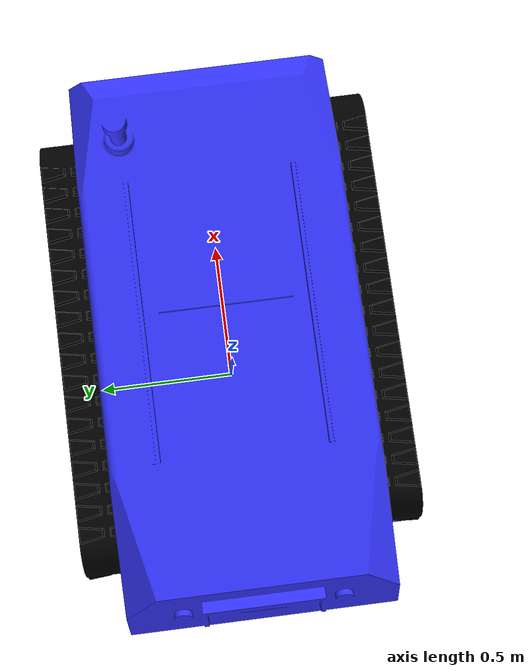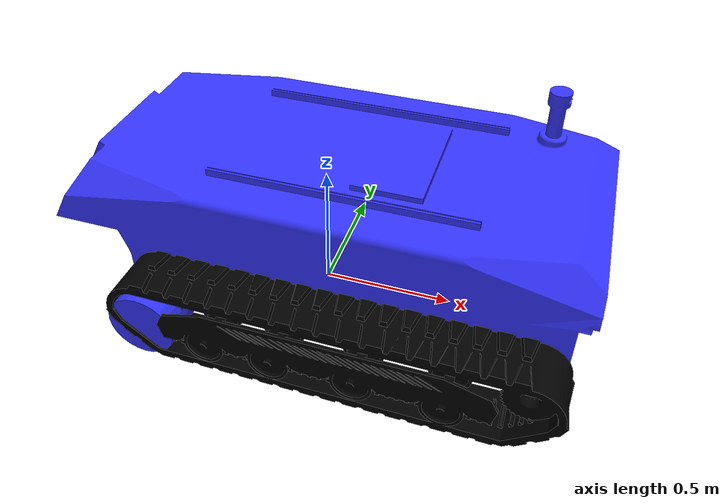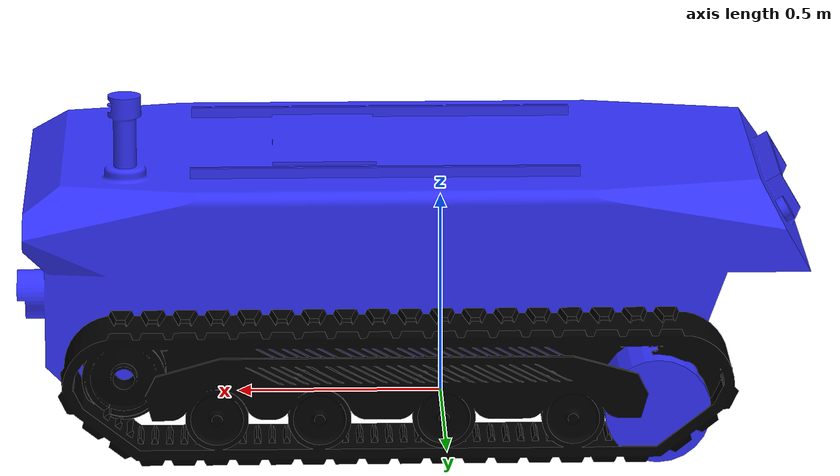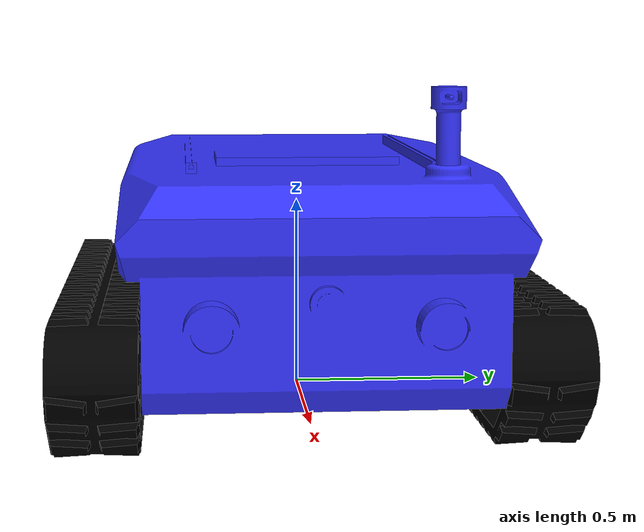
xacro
<?xml version="1.0"?>
<robot xmlns:xacro="http://www.ros.org/wiki/xacro" >

    <xacro:include filename="ugv_inertials.xacro"/>

    <material name="white">
        <color rgba="1 1 1 1" />
    </material>

    <material name="orange">
        <color rgba="1 0.3 0.1 1"/>
    </material>

    <material name="blue">
        <color rgba="0.2 0.2 1 1"/>
    </material>

    <material name="black">
        <color rgba="0 0 0 1"/>
    </material>

    <!-- BASE LINK -->
    <link name="base_link">
        <inertial>
          <mass value="1.0"/>
          <origin xyz="0 0 0" rpy="0 0 0"/>
          <inertia
            ixx="0.1" ixy="0.0" ixz="0.0"
            iyy="0.1" iyz="0.0"
            izz="0.1"/>
        </inertial>
        <visual>
          <geometry>
            <box size="0.2 0.2 0.2"/>
          </geometry>
          <origin xyz="0 0 0.1" rpy="0 0 0"/>
          <material name="white"/>
        </visual>
      </link>

    <!-- CHASSIS LINK -->
    <link name="chassis_link">
        <visual>
            <origin xyz="-0.88 -0.45 0" rpy="1.5708 0 1.5708"/> <!-- the total width of the body is 0.9 -->
            <geometry>
                <mesh
                  filename="file://$(find ugv_description)/meshes/body.STL" />
              </geometry>
            <material name="blue"/> <!-- Added here -->
        </visual>

        <collision>
            <origin xyz="-0.88 -0.45 0" rpy="1.5708 0 1.5708"/>
            <geometry>
                <mesh
                  filename="file://$(find ugv_description)/meshes/body.STL" />
              </geometry>
        </collision>

        <inertial>
          <mass value="15.0"/>
          <origin xyz="0.0 0 0" rpy=" 0 0 0"/>
          <inertia
              ixx="0.85" ixy="0" ixz="0"
              iyy="3.922" iyz="0"
              izz="4.672"
          />
        </inertial>
    </link>

    <joint name="chassis_joint" type="fixed">
        <parent link="base_link"/>
        <child link="chassis_link"/>
        <origin xyz="0 0 0.127"/>
    </joint>

    <!-- LEFT TRACK -->

    <link name="left_track_link">
        <visual>
          <origin xyz="-0.7 -0.1 0.0" rpy="1.5708 0 1.5708"/>
          <geometry>
            <mesh
              filename="file://$(find ugv_description)/meshes/track.STL" />
          </geometry>
          <material name="black"/>
        </visual>
      </link>

      <joint name="left_track_joint" type="fixed">
        <parent link="base_link"/>
        <child link="left_track_link"/>
        <origin xyz="0.0 0.5 0" rpy="0 0 0"/>
      </joint>

      <!-- RIGHT TRACK -->

      <link name="right_track_link">
        <visual>
          <origin xyz="-1.0 -0.1 0.0" rpy="1.5708 0 1.5708"/>
          <geometry>
            <mesh
              filename="file://$(find ugv_description)/meshes/track.STL" />
          </geometry>
          <material name="black"/>
        </visual>
      </link>

      <joint name="right_track_joint" type="fixed">
        <parent link="base_link"/>
        <child link="right_track_link"/>
        <origin xyz="0.0 -0.5 0.0" rpy="0 0 3.1415"/>
      </joint>

      <!--FRONT LEFT WHEEL-->

      <link name="front_left_wheel_link">

        <collision>
          <origin xyz="0 0 0" rpy="1.5708 0 0"/>
          <geometry>
              <cylinder radius="0.127" length="0.2"/>
          </geometry>
      </collision>

      <xacro:inertial_cylinder mass="4" length="0.2" radius="0.127">
        <origin xyz="0 0 0" rpy="0 0 0"/>
    </xacro:inertial_cylinder>

      </link>

      <joint name="front_left_wheel_joint" type="continuous">
        <parent link="base_link"/>
        <child link="front_left_wheel_link"/>
        <origin xyz="0.7 0.5 0.127" rpy="0 0 0"/>
        <axis xyz="0 1 0"/>

      </joint>

      <!--FRONT RIGHT WHEEL-->

      <link name="front_right_wheel_link">

        <collision>
          <origin xyz="0 0 0" rpy="1.5708 0 0"/>
          <geometry>
              <cylinder radius="0.127" length="0.2"/>
          </geometry>
      </collision>

      <xacro:inertial_cylinder mass="4" length="0.2" radius="0.127">
        <origin xyz="0 0 0" rpy="0 0 0"/>
    </xacro:inertial_cylinder>

      </link>

      <joint name="front_right_wheel_joint" type="continuous">
        <parent link="base_link"/>
        <child link="front_right_wheel_link"/>
        <origin xyz="0.7 -0.5 0.127" rpy="0 0 3.1415"/>
        <axis xyz="0 -1 0"/>

      </joint>

      <!--REAR LEFT WHEEL-->

      <link name="rear_left_wheel_link">

         <visual>
            <origin xyz="0 0 0" rpy="1.5708 0 0"/>
            <geometry>
            <cylinder radius="0.127" length="0.2"/>
            </geometry>
            <material name="blue"/>
        </visual>

        <collision>
          <origin xyz="0 0 0" rpy="1.5708 0 0"/>
          <geometry>
              <cylinder radius="0.127" length="0.2"/>
          </geometry>
      </collision>

      <xacro:inertial_cylinder mass="4" length="0.2" radius="0.127">
        <origin xyz="0 0 0" rpy="0 0 0"/>
    </xacro:inertial_cylinder>
      </link>

      <joint name="rear_left_wheel_joint" type="continuous">
        <parent link="base_link"/>
        <child link="rear_left_wheel_link"/>
        <origin xyz="-0.5 0.5 0.127" rpy="0 0 0"/>
        <axis xyz="0 1 0"/>
      </joint>

      <!--REAR RIGHT WHEEL-->

      <link name="rear_right_wheel_link">

        <visual>
            <origin xyz="0 0 0" rpy="1.5708 0 0"/>
            <geometry>
            <cylinder radius="0.127" length="0.2"/>
            </geometry>
            <material name="blue"/>
        </visual>

        <collision>
          <origin xyz="0 0 0" rpy="1.5708 0 0"/>
          <geometry>
              <cylinder radius="0.127" length="0.2"/>
          </geometry>
      </collision>

      <xacro:inertial_cylinder mass="4" length="0.2" radius="0.127">
        <origin xyz="0 0 0" rpy="0 0 0"/>
    </xacro:inertial_cylinder>
      </link>

      <joint name="rear_right_wheel_joint" type="continuous">
        <parent link="base_link"/>
        <child link="rear_right_wheel_link"/>
        <origin xyz="-0.5 -0.5 0.127" rpy="0 0 3.1415"/>
        <axis xyz="0 -1 0"/>

      </joint>

</robot>
